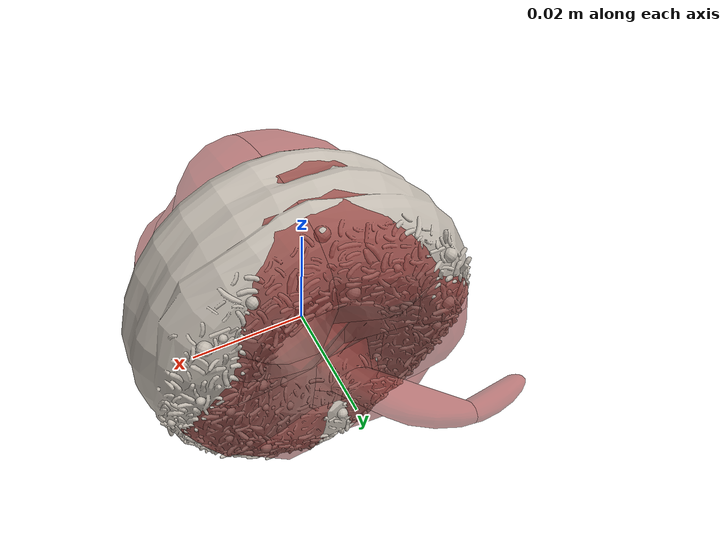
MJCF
<mujoco model="bell_pepper_1">
  <asset>
    <mesh file="visual/model_normalized_0.obj" name="model_normalized_0_vis" scale="0.06 0.06 0.06" refquat="0.7071067811865475 0.7071067811865476 0.0 0.0" />
    <texture type="2d" name="image0" file="visual/image0.png" />
    <material name="Material.003" texture="image0" specular="0.5" shininess="0.25" />
    <mesh file="collision/collision_mesh_collision_0.obj" name="bell_collision_mesh_0" scale="0.06 0.06 0.06" refquat="0.7071067811865475 0.7071067811865476 0.0 0.0" />
    <mesh file="collision/collision_mesh_collision_1.obj" name="bell_collision_mesh_1" scale="0.06 0.06 0.06" refquat="0.7071067811865475 0.7071067811865476 0.0 0.0" />
    <mesh file="collision/collision_mesh_collision_2.obj" name="bell_collision_mesh_2" scale="0.06 0.06 0.06" refquat="0.7071067811865475 0.7071067811865476 0.0 0.0" />
    <mesh file="collision/collision_mesh_collision_3.obj" name="bell_collision_mesh_3" scale="0.06 0.06 0.06" refquat="0.7071067811865475 0.7071067811865476 0.0 0.0" />
    <mesh file="collision/collision_mesh_collision_4.obj" name="bell_collision_mesh_4" scale="0.06 0.06 0.06" refquat="0.7071067811865475 0.7071067811865476 0.0 0.0" />
    <mesh file="collision/collision_mesh_collision_5.obj" name="bell_collision_mesh_5" scale="0.06 0.06 0.06" refquat="0.7071067811865475 0.7071067811865476 0.0 0.0" />
    <mesh file="collision/collision_mesh_collision_6.obj" name="bell_collision_mesh_6" scale="0.06 0.06 0.06" refquat="0.7071067811865475 0.7071067811865476 0.0 0.0" />
    <mesh file="collision/collision_mesh_collision_7.obj" name="bell_collision_mesh_7" scale="0.06 0.06 0.06" refquat="0.7071067811865475 0.7071067811865476 0.0 0.0" />
    <mesh file="collision/collision_mesh_collision_8.obj" name="bell_collision_mesh_8" scale="0.06 0.06 0.06" refquat="0.7071067811865475 0.7071067811865476 0.0 0.0" />
    <mesh file="collision/collision_mesh_collision_9.obj" name="bell_collision_mesh_9" scale="0.06 0.06 0.06" refquat="0.7071067811865475 0.7071067811865476 0.0 0.0" />
    <mesh file="collision/collision_mesh_collision_10.obj" name="bell_collision_mesh_10" scale="0.06 0.06 0.06" refquat="0.7071067811865475 0.7071067811865476 0.0 0.0" />
    <mesh file="collision/collision_mesh_collision_11.obj" name="bell_collision_mesh_11" scale="0.06 0.06 0.06" refquat="0.7071067811865475 0.7071067811865476 0.0 0.0" />
    <mesh file="collision/collision_mesh_collision_12.obj" name="bell_collision_mesh_12" scale="0.06 0.06 0.06" refquat="0.7071067811865475 0.7071067811865476 0.0 0.0" />
    <mesh file="collision/collision_mesh_collision_13.obj" name="bell_collision_mesh_13" scale="0.06 0.06 0.06" refquat="0.7071067811865475 0.7071067811865476 0.0 0.0" />
    <mesh file="collision/collision_mesh_collision_14.obj" name="bell_collision_mesh_14" scale="0.06 0.06 0.06" refquat="0.7071067811865475 0.7071067811865476 0.0 0.0" />
    <mesh file="collision/collision_mesh_collision_15.obj" name="bell_collision_mesh_15" scale="0.06 0.06 0.06" refquat="0.7071067811865475 0.7071067811865476 0.0 0.0" />
  </asset>
  <default>
    <default class="region">
      <geom group="1" conaffinity="0" contype="0" rgba="0 1 0 0" />
    </default>
    <default class="collision">
      <geom group="0" rgba="0.5 0 0 0.5" density="1000.0" />
    </default>
  </default>
  <worldbody>
    <body>
      <body name="object">
        <geom solimp="0.998 0.998 0.001" solref="0.001 1" density="100" friction="0.95 0.3 0.1" type="mesh" mesh="model_normalized_0_vis" conaffinity="0" contype="0" group="1" material="Material.003" />
        <geom class="region" name="reg_bbox" type="box" pos="0.00000 0.00000 -0.00000" size="0.02731 0.03000 0.02860" />
        <geom mesh="bell_collision_mesh_0" type="mesh" class="collision" />
        <geom mesh="bell_collision_mesh_1" type="mesh" class="collision" />
        <geom mesh="bell_collision_mesh_2" type="mesh" class="collision" />
        <geom mesh="bell_collision_mesh_3" type="mesh" class="collision" />
        <geom mesh="bell_collision_mesh_4" type="mesh" class="collision" />
        <geom mesh="bell_collision_mesh_5" type="mesh" class="collision" />
        <geom mesh="bell_collision_mesh_6" type="mesh" class="collision" />
        <geom mesh="bell_collision_mesh_7" type="mesh" class="collision" />
        <geom mesh="bell_collision_mesh_8" type="mesh" class="collision" />
        <geom mesh="bell_collision_mesh_9" type="mesh" class="collision" />
        <geom mesh="bell_collision_mesh_10" type="mesh" class="collision" />
        <geom mesh="bell_collision_mesh_11" type="mesh" class="collision" />
        <geom mesh="bell_collision_mesh_12" type="mesh" class="collision" />
        <geom mesh="bell_collision_mesh_13" type="mesh" class="collision" />
        <geom mesh="bell_collision_mesh_14" type="mesh" class="collision" />
        <geom mesh="bell_collision_mesh_15" type="mesh" class="collision" />
      </body>
    </body>
  </worldbody>
</mujoco>
